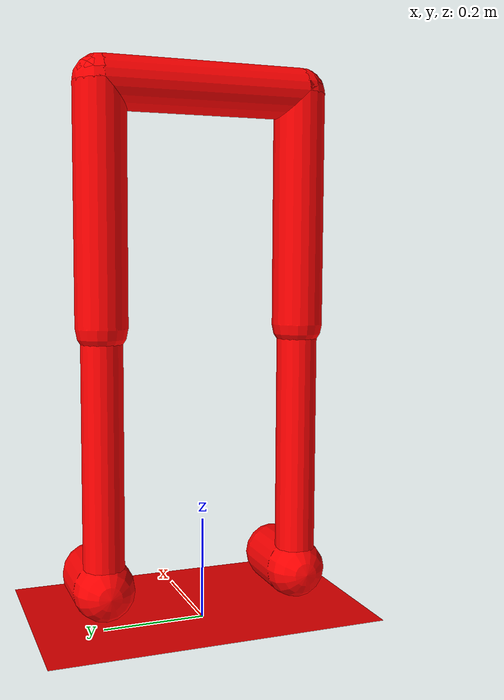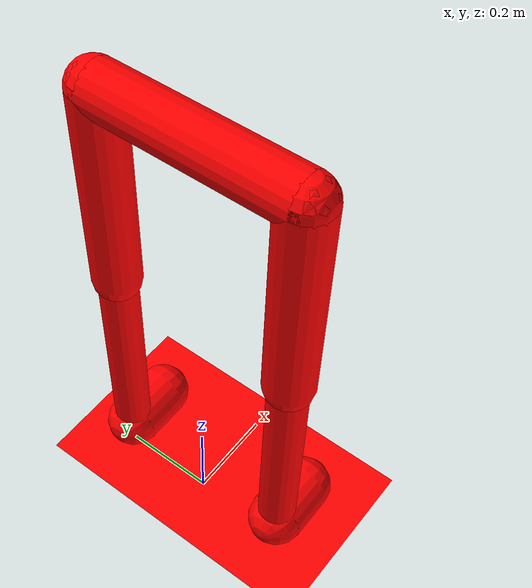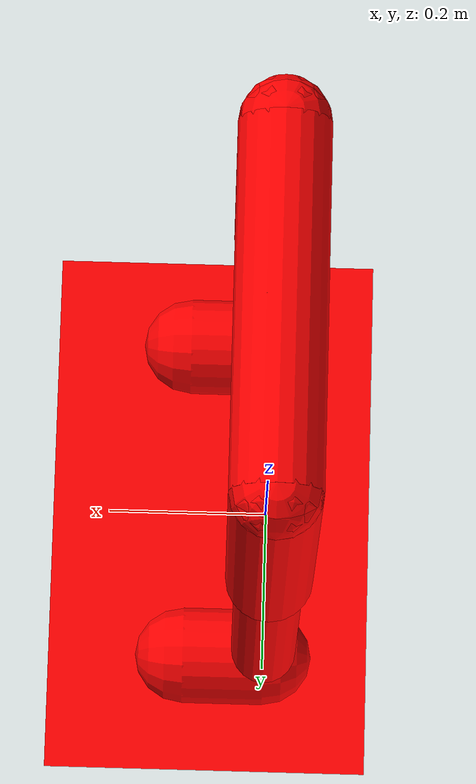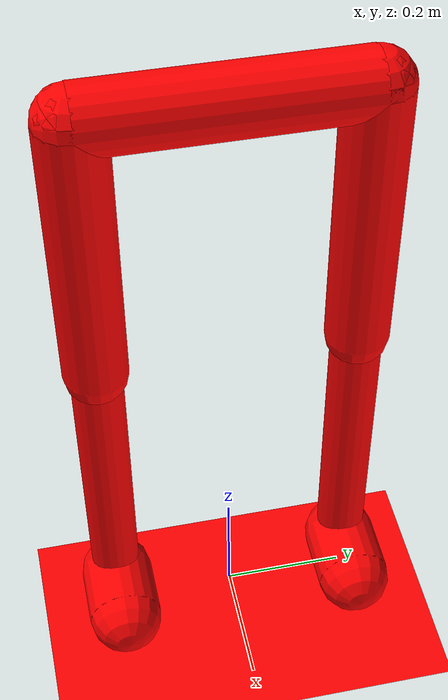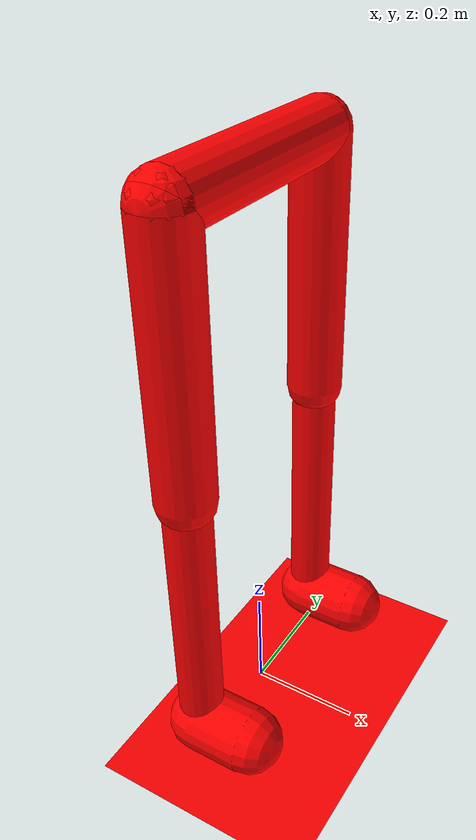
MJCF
<mujoco model="walker3d">
  <compiler angle="degree" coordinate="local" inertiafromgeom="true"/>
  <size njmax="3000" nconmax="1000"/>
  <default>
    <joint armature="1" damping="20" limited="true"/>
    <geom condim="6" density="500" friction=".7 .1 .1" rgba="1 0 0  1"/>
    <site size="0.05" type="sphere" rgba="0 0 1 1"/>
  </default>
  <option timestep="0.01"/>
  <worldbody>
    <geom name="floor" size="5 5 0.1" type="plane" condim="6"/>
    <body name="robot" pos="0 0 1.03">
      <site name="robot" rgba="1 0 0 .1"/>
      <camera name="vision" pos=".125 0 .2" xyaxes="0 -1 0 .4 0 1" fovy="100"/>
      <joint armature="0" axis="1 0 0" damping="10" limited="false" name="rootx" pos="0 0 0" stiffness="0" type="slide"/>
      <joint armature="0" axis="0 0 1" damping="1" limited="false" name="rootz" pos="0 0 0" stiffness="0.1" type="hinge"/>
      <joint armature="0" axis="0 1 0" damping="10" limited="false" name="rooty" pos="0 0 0" stiffness="0" type="slide"/>

      <geom friction="0.9" fromto="0 0.2 0 0 -0.2 0" name="robot_geom" size="0.05" type="capsule"/>
      <body name="thigh" pos="0 0.2 0">
        <joint armature="0.01" axis="1 0 0" damping="5" name="right_hip_x" pos="0 0 0" range="-25 5" stiffness="10" type="hinge"/>
        <joint armature="0.01" axis="0 0 1" damping="5" name="right_hip_z" pos="0 0 0" range="-60 35" stiffness="10" type="hinge"/>
        <joint armature="0.01" axis="0 1 0" damping="5" name="right_hip_y" pos="0 0 0" range="-150 0" stiffness="10" type="hinge"/>
        <geom friction="0.9" fromto="0 0 0 0 0 -0.45" name="thigh_geom" size="0.05" type="capsule"/>
        <body name="leg" pos="0 0 -0.7">
          <joint axis="0 -1 0" name="leg_joint" pos="0 0 0.25" range="-100 0" type="hinge"/>
          <geom friction="0.9" fromto="0 0 0.25 0 0 -0.25" name="leg_geom" size="0.04" type="capsule"/>
          <body name="foot" pos="0.0 0.0 0.0">
            <joint axis="0 -1 0" name="foot_joint" pos="0.0 0.0 -0.25" range="-45 20" type="hinge"/>
            <geom friction="2.0" fromto="0.0 0.0 -0.25 0.1 0.0 -0.25" name="foot_geom" size="0.06" type="capsule"/>
            <site name="foot" pos="0.1 0 -0.25"/>
          </body>
        </body>
      </body>
      <!-- copied and then replace thigh->thigh_left, leg->leg_left, foot->foot_right -->
      <body name="thigh_left" pos="0 -0.2 0">
        <joint armature="0.01" axis="-1 0 0" damping="5" name="left_hip_x" pos="0 0 0" range="-25 5" stiffness="10" type="hinge"/>
        <joint armature="0.01" axis="0 0 -1" damping="5" name="left_hip_z" pos="0 0 0" range="-60 35" stiffness="10" type="hinge"/>
        <joint armature="0.01" axis="0 1 0" damping="5" name="left_hip_y" pos="0 0 0" range="-150 0" stiffness="10" type="hinge"/>
        <geom friction="0.9" fromto="0 0 0 0 0 -0.45" name="thigh_left_geom" size="0.05" type="capsule"/>
        <body name="leg_left" pos="0 0 -0.7">
          <joint axis="0 -1 0" name="leg_left_joint" pos="0 0 0.25" range="-100 0" type="hinge"/>
          <geom friction="0.9" fromto="0 0 0.25 0 0 -0.25" name="leg_left_geom" size="0.04" type="capsule"/>
          <body name="foot_left" pos="0.0 0.0 0.0">
            <joint axis="0 -1 0" name="foot_left_joint" pos="0.0 0.0 -0.25" range="-45 20" type="hinge"/>
            <geom friction="2.0" fromto="0.0 0.0 -0.25 0.1 0.0 -0.25" name="foot_left_geom" size="0.06" type="capsule"/>
            <site name="foot_left" pos="0.1 0 -0.25"/>
          </body>
        </body>
      </body>
    </body>
  </worldbody>
  <sensor>
    <touch site="foot" name="touch_foot"/>
    <touch site="foot_left" name="touch_foot_left"/>

    <jointpos joint="leg_joint" name="jointpos_leg_joint"/>
    <jointpos joint="foot_joint" name="jointpos_foot_joint"/>
    <jointpos joint="leg_left_joint" name="jointpos_leg_left_joint"/>
    <jointpos joint="foot_left_joint" name="jointpos_foot_left_joint"/>
    <jointpos joint="right_hip_x" name="jointpos_right_hip_x"/>
    <jointpos joint="right_hip_z" name="jointpos_right_hip_z"/>
    <jointpos joint="right_hip_y" name="jointpos_right_hip_y"/>
    <jointpos joint="left_hip_x" name="jointpos_left_hip_x"/>
    <jointpos joint="left_hip_z" name="jointpos_left_hip_z"/>
    <jointpos joint="left_hip_y" name="jointpos_left_hip_y"/>

    <jointvel joint="leg_joint" name="jointvel_leg_joint"/>
    <jointvel joint="foot_joint" name="jointvel_foot_joint"/>
    <jointvel joint="leg_left_joint" name="jointvel_leg_left_joint"/>
    <jointvel joint="foot_left_joint" name="jointvel_foot_left_joint"/>
    <jointvel joint="right_hip_x" name="jointvel_right_hip_x"/>
    <jointvel joint="right_hip_z" name="jointvel_right_hip_z"/>
    <jointvel joint="right_hip_y" name="jointvel_right_hip_y"/>
    <jointvel joint="left_hip_x" name="jointvel_left_hip_x"/>
    <jointvel joint="left_hip_z" name="jointvel_left_hip_z"/>
    <jointvel joint="left_hip_y" name="jointvel_left_hip_y"/>

    <!-- Used for observation -->
    <accelerometer site="robot" name="accelerometer"/>
    <velocimeter site="robot" name="velocimeter"/>
    <gyro site="robot" name="gyro"/>
    <magnetometer site="robot" name="magnetometer"/>

    <!-- Used for intrinsic constraints -->
    <subtreecom body="robot" name="subtreecom"/>
    <subtreelinvel body="robot" name="subtreelinvel"/>
    <subtreeangmom body="robot" name="subtreeangmom"/>
  </sensor>
  <actuator>
    <motor ctrllimited="true" ctrlrange="-1.0 1.0" gear="40" joint="leg_joint"/>
    <motor ctrllimited="true" ctrlrange="-1.0 1.0" gear="50" joint="foot_joint"/>
    <motor ctrllimited="true" ctrlrange="-1.0 1.0" gear="40" joint="leg_left_joint"/>
    <motor ctrllimited="true" ctrlrange="-1.0 1.0" gear="50" joint="foot_left_joint"/>

    <motor gear="20" joint="right_hip_x" name="right_hip_x"/>
    <motor gear="20" joint="right_hip_z" name="right_hip_z"/>
    <motor gear="150" joint="right_hip_y" name="right_hip_y"/>
    <motor gear="20" joint="left_hip_x" name="left_hip_x"/>
    <motor gear="20" joint="left_hip_z" name="left_hip_z"/>
    <motor gear="150" joint="left_hip_y" name="left_hip_y"/>
  </actuator>
</mujoco>
